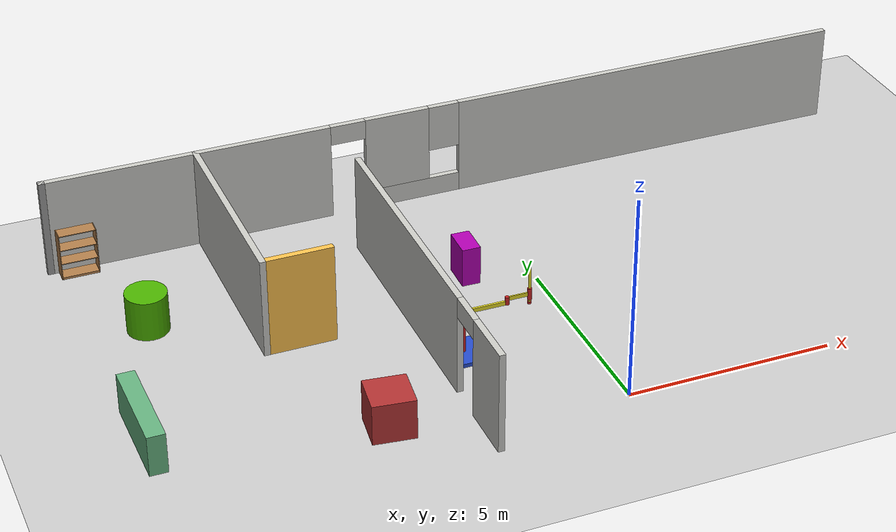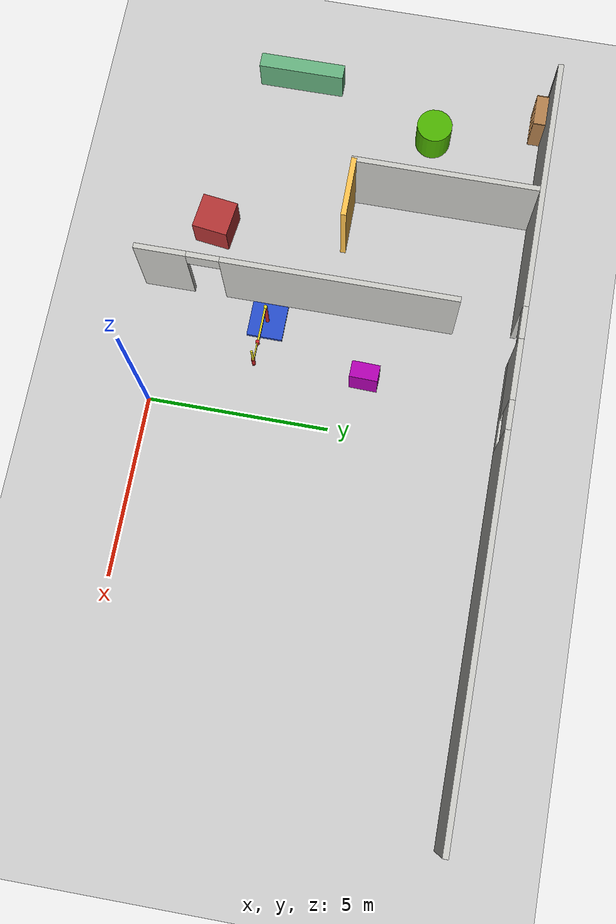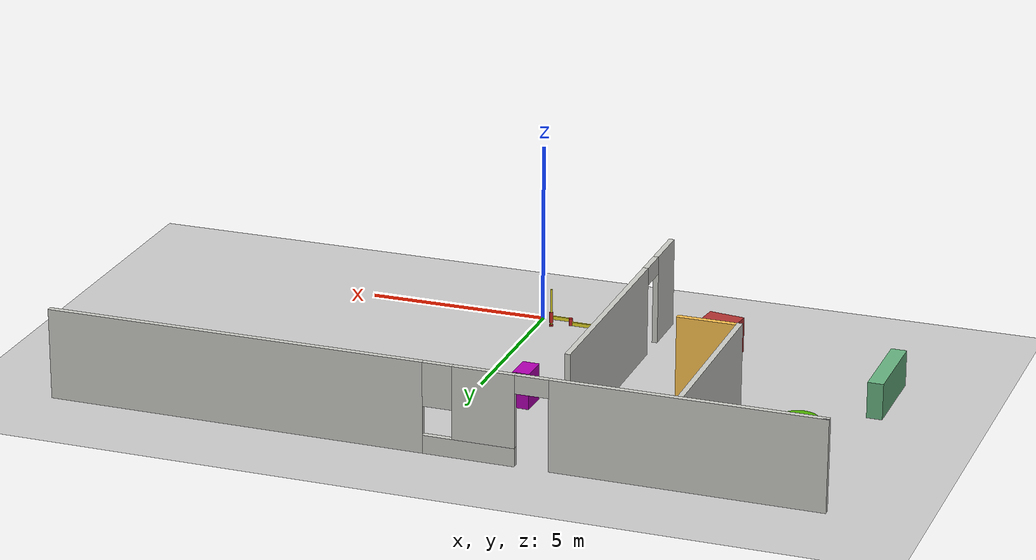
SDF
<sdf version="1.7">
 <world name="default">
  <model name="ground_plane">
   <static>1</static>
   <link name="link">
    <collision name="collision">
     <geometry><plane><normal>0 0 1</normal><size>100 100</size></plane></geometry>
     <surface><friction><ode><mu>100</mu><mu2>50</mu2></ode></friction></surface>
    </collision>
    <visual name="visual">
     <cast_shadows>0</cast_shadows>
     <geometry><plane><normal>0 0 1</normal><size>100 100</size></plane></geometry>
     <material>
      <script><uri>file://media/materials/scripts/gazebo.material</uri><name>Gazebo/Grey</name></script>
     </material>
    </visual>
   </link>
  </model>
  <model name="unit_box_1_0">
   <link name="link">
    <inertial>
     <mass>0.354011</mass>
     <inertia>
      <ixx>0.0472343</ixx>
      <ixy>0</ixy>
      <ixz>0</ixz>
      <iyy>0.0356513</iyy>
      <iyz>0</iyz>
      <izz>0.0238838</izz>
     </inertia>
    </inertial>
    <visual name="visual">
     <geometry><box><size>0.456597 0.775316 1</size></box></geometry>
     <material>
      <script><name>Gazebo/Grey</name><uri>file://media/materials/scripts/gazebo.material</uri></script>
      <shader type="pixel"><normal_map>__default__</normal_map></shader>
      <ambient>0.7 0 0.7 0</ambient>
      <diffuse>0.7 0.7 0.7 1</diffuse>
      <specular>0.01 0.01 0.01 1</specular>
      <emissive>0 0 0 1</emissive>
     </material>
    </visual>
    <collision name="collision">
     <geometry><box><size>0.456597 0.775316 1</size></box></geometry>
     <surface>
      <friction>
       <ode><mu>1</mu><mu2>1</mu2><fdir1>0 0 0</fdir1><slip1>0</slip1><slip2>0</slip2></ode>
       <torsional>
        <coefficient>1</coefficient>
        <patch_radius>0</patch_radius>
        <surface_radius>0</surface_radius>
        <use_patch_radius>1</use_patch_radius>
        <ode><slip>0</slip></ode>
       </torsional>
      </friction>
      <bounce><restitution_coefficient>0</restitution_coefficient><threshold>1e+06</threshold></bounce>
      <contact>
       <collide_without_contact>0</collide_without_contact>
       <collide_without_contact_bitmask>1</collide_without_contact_bitmask>
       <collide_bitmask>1</collide_bitmask>
       <ode>
        <soft_cfm>0</soft_cfm>
        <soft_erp>0.2</soft_erp>
        <kp>1e+13</kp>
        <kd>1</kd>
        <max_vel>0.01</max_vel>
        <min_depth>0</min_depth>
       </ode>
       <bullet>
        <split_impulse>1</split_impulse>
        <split_impulse_penetration_threshold>-0.01</split_impulse_penetration_threshold>
        <soft_cfm>0</soft_cfm>
        <soft_erp>0.2</soft_erp>
        <kp>1e+13</kp>
        <kd>1</kd>
       </bullet>
      </contact>
     </surface>
    </collision>
   </link>
   <static>0</static>
   <pose>-1.52355 5.76066 0.499996 9e-06 2e-06 -0.02596</pose>
  </model>
  <model name="unit_cylinder_13">
   <link name="link">
    <inertial>
     <mass>1</mass>
     <inertia><ixx>0.145833</ixx><ixy>0</ixy><ixz>0</ixz><iyy>0.145833</iyy><iyz>0</iyz><izz>0.125</izz></inertia>
    </inertial>
    <visual name="visual">
     <geometry><cylinder><radius>0.5</radius><length>1</length></cylinder></geometry>
     <material>
      <script><name>Gazebo/Grey</name><uri>file://media/materials/scripts/gazebo.material</uri></script>
      <shader type="pixel"><normal_map>__default__</normal_map></shader>
      <ambient>0.3 0.7 0 0</ambient>
      <diffuse>0.7 0.7 0.7 1</diffuse>
      <specular>0.01 0.01 0.01 1</specular>
      <emissive>0 0 0 1</emissive>
     </material>
    </visual>
    <collision name="collision">
     <geometry><cylinder><radius>0.5</radius><length>1</length></cylinder></geometry>
     <surface>
      <friction>
       <ode><mu>1</mu><mu2>1</mu2><fdir1>0 0 0</fdir1><slip1>0</slip1><slip2>0</slip2></ode>
       <torsional>
        <coefficient>1</coefficient>
        <patch_radius>0</patch_radius>
        <surface_radius>0</surface_radius>
        <use_patch_radius>1</use_patch_radius>
        <ode><slip>0</slip></ode>
       </torsional>
      </friction>
      <bounce><restitution_coefficient>0</restitution_coefficient><threshold>1e+06</threshold></bounce>
      <contact>
       <collide_without_contact>0</collide_without_contact>
       <collide_without_contact_bitmask>1</collide_without_contact_bitmask>
       <collide_bitmask>1</collide_bitmask>
       <ode>
        <soft_cfm>0</soft_cfm>
        <soft_erp>0.2</soft_erp>
        <kp>1e+13</kp>
        <kd>1</kd>
        <max_vel>0.01</max_vel>
        <min_depth>0</min_depth>
       </ode>
       <bullet>
        <split_impulse>1</split_impulse>
        <split_impulse_penetration_threshold>-0.01</split_impulse_penetration_threshold>
        <soft_cfm>0</soft_cfm>
        <soft_erp>0.2</soft_erp>
        <kp>1e+13</kp>
        <kd>1</kd>
       </bullet>
      </contact>
     </surface>
    </collision>
   </link>
   <static>0</static>
   <pose>-9.10904 6.48116 0.499998 3e-06 1e-06 -0</pose>
  </model>
  <model name="unit_box_15">
   <link name="link">
    <inertial>
     <mass>1</mass>
     <inertia>
      <ixx>0.166667</ixx>
      <ixy>0</ixy>
      <ixz>0</ixz>
      <iyy>0.166667</iyy>
      <iyz>0</iyz>
      <izz>0.166667</izz>
     </inertia>
    </inertial>
    <visual name="visual">
     <geometry><box><size>1 1 1</size></box></geometry>
     <material>
      <script><name>Gazebo/Grey</name><uri>file://media/materials/scripts/gazebo.material</uri></script>
      <shader type="pixel"><normal_map>__default__</normal_map></shader>
      <ambient>0.7 0.2 0.2 0</ambient>
      <diffuse>0.7 0.7 0.7 1</diffuse>
      <specular>0.01 0.01 0.01 1</specular>
      <emissive>0 0 0 1</emissive>
     </material>
    </visual>
    <collision name="collision">
     <geometry><box><size>1 1 1</size></box></geometry>
     <surface>
      <friction>
       <ode><mu>1</mu><mu2>1</mu2><fdir1>0 0 0</fdir1><slip1>0</slip1><slip2>0</slip2></ode>
       <torsional>
        <coefficient>1</coefficient>
        <patch_radius>0</patch_radius>
        <surface_radius>0</surface_radius>
        <use_patch_radius>1</use_patch_radius>
        <ode><slip>0</slip></ode>
       </torsional>
      </friction>
      <bounce><restitution_coefficient>0</restitution_coefficient><threshold>1e+06</threshold></bounce>
      <contact>
       <collide_without_contact>0</collide_without_contact>
       <collide_without_contact_bitmask>1</collide_without_contact_bitmask>
       <collide_bitmask>1</collide_bitmask>
       <ode>
        <soft_cfm>0</soft_cfm>
        <soft_erp>0.2</soft_erp>
        <kp>1e+13</kp>
        <kd>1</kd>
        <max_vel>0.01</max_vel>
        <min_depth>0</min_depth>
       </ode>
       <bullet>
        <split_impulse>1</split_impulse>
        <split_impulse_penetration_threshold>-0.01</split_impulse_penetration_threshold>
        <soft_cfm>0</soft_cfm>
        <soft_erp>0.2</soft_erp>
        <kp>1e+13</kp>
        <kd>1</kd>
       </bullet>
      </contact>
     </surface>
    </collision>
   </link>
   <static>0</static>
   <pose>-5.30929 0.86418 0.499999 1.5708 2e-06 -0.128436</pose>
  </model>
  <model name="simple_arm">
   <link name="arm_base">
    <inertial>
     <pose>0 0 0.00099 0 -0 0</pose>
     <inertia><ixx>1.11</ixx><ixy>0</ixy><ixz>0</ixz><iyy>100.11</iyy><iyz>0</iyz><izz>1.01</izz></inertia>
     <mass>101</mass>
    </inertial>
    <collision name="arm_base_geom">
     <pose>0 0 0.05 0 -0 0</pose>
     <geometry><box><size>1 1 0.1</size></box></geometry>
    </collision>
    <visual name="arm_base_geom_visual">
     <pose>0 0 0.05 0 -0 0</pose>
     <geometry><box><size>1 1 0.1</size></box></geometry>
     <material>
      <script><uri>file://media/materials/scripts/gazebo.material</uri><name>Gazebo/Blue</name></script>
     </material>
    </visual>
    <collision name="arm_base_geom_arm_trunk">
     <pose>0 0 0.6 0 -0 0</pose>
     <geometry><cylinder><radius>0.05</radius><length>1</length></cylinder></geometry>
    </collision>
    <visual name="arm_base_geom_arm_trunk_visual">
     <pose>0 0 0.6 0 -0 0</pose>
     <geometry><cylinder><radius>0.05</radius><length>1</length></cylinder></geometry>
     <material>
      <script><uri>file://media/materials/scripts/gazebo.material</uri><name>Gazebo/Red</name></script>
     </material>
    </visual>
   </link>
   <link name="arm_shoulder_pan">
    <pose>0 0 1.1 0 -0 0</pose>
    <inertial>
     <pose>0.045455 0 0 0 -0 0</pose>
     <inertia><ixx>0.011</ixx><ixy>0</ixy><ixz>0</ixz><iyy>0.0225</iyy><iyz>0</iyz><izz>0.0135</izz></inertia>
     <mass>1.1</mass>
    </inertial>
    <collision name="arm_shoulder_pan_geom">
     <pose>0 0 0.05 0 -0 0</pose>
     <geometry><cylinder><radius>0.05</radius><length>0.1</length></cylinder></geometry>
    </collision>
    <visual name="arm_shoulder_pan_geom_visual">
     <pose>0 0 0.05 0 -0 0</pose>
     <geometry><cylinder><radius>0.05</radius><length>0.1</length></cylinder></geometry>
     <material>
      <script><uri>file://media/materials/scripts/gazebo.material</uri><name>Gazebo/Yellow</name></script>
     </material>
    </visual>
    <collision name="arm_shoulder_pan_geom_arm_shoulder">
     <pose>0.55 0 0.05 0 -0 0</pose>
     <geometry><box><size>1 0.05 0.1</size></box></geometry>
    </collision>
    <visual name="arm_shoulder_pan_geom_arm_shoulder_visual">
     <pose>0.55 0 0.05 0 -0 0</pose>
     <geometry><box><size>1 0.05 0.1</size></box></geometry>
     <material>
      <script><uri>file://media/materials/scripts/gazebo.material</uri><name>Gazebo/Yellow</name></script>
     </material>
    </visual>
   </link>
   <link name="arm_elbow_pan">
    <pose>1.05 0 1.1 0 -0 0</pose>
    <inertial>
     <pose>0.0875 0 0.083333 0 -0 0</pose>
     <inertia>
      <ixx>0.031</ixx>
      <ixy>0</ixy>
      <ixz>0.005</ixz>
      <iyy>0.07275</iyy>
      <iyz>0</iyz>
      <izz>0.04475</izz>
     </inertia>
     <mass>1.2</mass>
    </inertial>
    <collision name="arm_elbow_pan_geom">
     <pose>0 0 0.1 0 -0 0</pose>
     <geometry><cylinder><radius>0.05</radius><length>0.2</length></cylinder></geometry>
    </collision>
    <visual name="arm_elbow_pan_geom_visual">
     <pose>0 0 0.1 0 -0 0</pose>
     <geometry><cylinder><radius>0.05</radius><length>0.2</length></cylinder></geometry>
     <material>
      <script><uri>file://media/materials/scripts/gazebo.material</uri><name>Gazebo/Red</name></script>
     </material>
    </visual>
    <collision name="arm_elbow_pan_geom_arm_elbow">
     <pose>0.3 0 0.15 0 -0 0</pose>
     <geometry><box><size>0.5 0.03 0.1</size></box></geometry>
    </collision>
    <visual name="arm_elbow_pan_geom_arm_elbow_visual">
     <pose>0.3 0 0.15 0 -0 0</pose>
     <geometry><box><size>0.5 0.03 0.1</size></box></geometry>
     <material>
      <script><uri>file://media/materials/scripts/gazebo.material</uri><name>Gazebo/Yellow</name></script>
     </material>
    </visual>
    <collision name="arm_elbow_pan_geom_arm_wrist">
     <pose>0.55 0 0.15 0 -0 0</pose>
     <geometry><cylinder><radius>0.05</radius><length>0.3</length></cylinder></geometry>
    </collision>
    <visual name="arm_elbow_pan_geom_arm_wrist_visual">
     <pose>0.55 0 0.15 0 -0 0</pose>
     <geometry><cylinder><radius>0.05</radius><length>0.3</length></cylinder></geometry>
     <material>
      <script><uri>file://media/materials/scripts/gazebo.material</uri><name>Gazebo/Red</name></script>
     </material>
    </visual>
   </link>
   <link name="arm_wrist_lift">
    <pose>1.6 0 1.05 0 -0 0</pose>
    <inertial>
     <inertia><ixx>0.01</ixx><ixy>0</ixy><ixz>0</ixz><iyy>0.01</iyy><iyz>0</iyz><izz>0.001</izz></inertia>
     <mass>0.1</mass>
    </inertial>
    <collision name="arm_wrist_lift_geom">
     <pose>0 0 0.5 0 -0 0</pose>
     <geometry><cylinder><radius>0.03</radius><length>1</length></cylinder></geometry>
    </collision>
    <visual name="arm_wrist_lift_geom_visual">
     <pose>0 0 0.5 0 -0 0</pose>
     <geometry><cylinder><radius>0.03</radius><length>1</length></cylinder></geometry>
     <material>
      <script><uri>file://media/materials/scripts/gazebo.material</uri><name>Gazebo/Yellow</name></script>
     </material>
    </visual>
   </link>
   <link name="arm_wrist_roll">
    <pose>1.6 0 1 0 -0 0</pose>
    <inertial>
     <inertia><ixx>0.01</ixx><ixy>0</ixy><ixz>0</ixz><iyy>0.01</iyy><iyz>0</iyz><izz>0.001</izz></inertia>
     <mass>0.1</mass>
    </inertial>
    <collision name="arm_wrist_roll_geom">
     <pose>0 0 0.025 0 -0 0</pose>
     <geometry><cylinder><radius>0.05</radius><length>0.05</length></cylinder></geometry>
    </collision>
    <visual name="arm_wrist_roll_geom_visual">
     <pose>0 0 0.025 0 -0 0</pose>
     <geometry><cylinder><radius>0.05</radius><length>0.05</length></cylinder></geometry>
     <material>
      <script><uri>file://media/materials/scripts/gazebo.material</uri><name>Gazebo/Red</name></script>
     </material>
    </visual>
   </link>
   <joint name="arm_shoulder_pan_joint" type="revolute">
    <parent>arm_base</parent>
    <child>arm_shoulder_pan</child>
    <axis>
     <dynamics>
      <damping>1</damping>
      <friction>0</friction>
      <spring_reference>0</spring_reference>
      <spring_stiffness>0</spring_stiffness>
     </dynamics>
     <xyz expressed_in="__model__">0 0 1</xyz>
     <limit><lower>-1e+16</lower><upper>1e+16</upper></limit>
    </axis>
   </joint>
   <joint name="arm_elbow_pan_joint" type="revolute">
    <parent>arm_shoulder_pan</parent>
    <child>arm_elbow_pan</child>
    <axis>
     <dynamics>
      <damping>1</damping>
      <friction>0</friction>
      <spring_reference>0</spring_reference>
      <spring_stiffness>0</spring_stiffness>
     </dynamics>
     <xyz expressed_in="__model__">0 0 1</xyz>
     <limit><lower>-1e+16</lower><upper>1e+16</upper></limit>
    </axis>
   </joint>
   <joint name="arm_wrist_lift_joint" type="prismatic">
    <parent>arm_elbow_pan</parent>
    <child>arm_wrist_lift</child>
    <axis>
     <dynamics>
      <damping>1</damping>
      <friction>0</friction>
      <spring_reference>0</spring_reference>
      <spring_stiffness>0</spring_stiffness>
     </dynamics>
     <limit><lower>-0.8</lower><upper>0.1</upper></limit>
     <xyz expressed_in="__model__">0 0 1</xyz>
    </axis>
   </joint>
   <joint name="arm_wrist_roll_joint" type="revolute">
    <parent>arm_wrist_lift</parent>
    <child>arm_wrist_roll</child>
    <axis>
     <dynamics>
      <damping>1</damping>
      <friction>0</friction>
      <spring_reference>0</spring_reference>
      <spring_stiffness>0</spring_stiffness>
     </dynamics>
     <limit><lower>-2.99999</lower><upper>2.99999</upper></limit>
     <xyz expressed_in="__model__">0 0 1</xyz>
    </axis>
   </joint>
   <pose>-2.79115 2.80103 -0 0 -0 -0.006956</pose>
  </model>
  <model name="bookshelf">
   <static>1</static>
   <link name="link">
    <inertial><mass>1</mass></inertial>
    <collision name="back">
     <pose>0 0.005 0.6 0 -0 0</pose>
     <geometry><box><size>0.9 0.01 1.2</size></box></geometry>
    </collision>
    <visual name="visual1">
     <pose>0 0.005 0.6 0 -0 0</pose>
     <geometry><box><size>0.9 0.01 1.2</size></box></geometry>
     <material>
      <script><uri>file://media/materials/scripts/gazebo.material</uri><name>Gazebo/Wood</name></script>
     </material>
    </visual>
    <collision name="left_side">
     <pose>0.45 -0.195 0.6 0 -0 0</pose>
     <geometry><box><size>0.02 0.4 1.2</size></box></geometry>
    </collision>
    <visual name="visual2">
     <pose>0.45 -0.195 0.6 0 -0 0</pose>
     <geometry><box><size>0.02 0.4 1.2</size></box></geometry>
     <material>
      <script><uri>file://media/materials/scripts/gazebo.material</uri><name>Gazebo/Wood</name></script>
     </material>
    </visual>
    <collision name="right_side">
     <pose>-0.45 -0.195 0.6 0 -0 0</pose>
     <geometry><box><size>0.02 0.4 1.2</size></box></geometry>
    </collision>
    <visual name="visual3">
     <pose>-0.45 -0.195 0.6 0 -0 0</pose>
     <geometry><box><size>0.02 0.4 1.2</size></box></geometry>
     <material>
      <script><uri>file://media/materials/scripts/gazebo.material</uri><name>Gazebo/Wood</name></script>
     </material>
    </visual>
    <collision name="bottom">
     <pose>0 -0.195 0.03 0 -0 0</pose>
     <geometry><box><size>0.88 0.4 0.06</size></box></geometry>
    </collision>
    <visual name="visual4">
     <pose>0 -0.195 0.03 0 -0 0</pose>
     <geometry><box><size>0.88 0.4 0.06</size></box></geometry>
     <material>
      <script><uri>file://media/materials/scripts/gazebo.material</uri><name>Gazebo/Wood</name></script>
     </material>
    </visual>
    <collision name="top">
     <pose>0 -0.195 1.19 0 -0 0</pose>
     <geometry><box><size>0.88 0.4 0.02</size></box></geometry>
    </collision>
    <visual name="visual5">
     <pose>0 -0.195 1.19 0 -0 0</pose>
     <geometry><box><size>0.88 0.4 0.02</size></box></geometry>
     <material>
      <script><uri>file://media/materials/scripts/gazebo.material</uri><name>Gazebo/Wood</name></script>
     </material>
    </visual>
    <collision name="low_shelf">
     <pose>0 -0.195 0.43 0 -0 0</pose>
     <geometry><box><size>0.88 0.4 0.02</size></box></geometry>
    </collision>
    <visual name="visual6">
     <pose>0 -0.195 0.43 0 -0 0</pose>
     <geometry><box><size>0.88 0.4 0.02</size></box></geometry>
     <material>
      <script><uri>file://media/materials/scripts/gazebo.material</uri><name>Gazebo/Wood</name></script>
     </material>
    </visual>
    <collision name="high_shelf">
     <pose>0 -0.195 0.8 0 -0 0</pose>
     <geometry><box><size>0.88 0.4 0.02</size></box></geometry>
    </collision>
    <visual name="visual7">
     <pose>0 -0.195 0.8 0 -0 0</pose>
     <geometry><box><size>0.88 0.4 0.02</size></box></geometry>
     <material>
      <script><uri>file://media/materials/scripts/gazebo.material</uri><name>Gazebo/Wood</name></script>
     </material>
    </visual>
   </link>
   <pose>-10.0015 9.61111 0 0 -0 0</pose>
  </model>
  <model name="unit_box90">
   <link name="link">
    <inertial>
     <mass>1</mass>
     <inertia>
      <ixx>0.166667</ixx>
      <ixy>0</ixy>
      <ixz>0</ixz>
      <iyy>0.166667</iyy>
      <iyz>0</iyz>
      <izz>0.166667</izz>
     </inertia>
    </inertial>
    <visual name="visual">
     <geometry><box><size>0.424568 2.43542 1</size></box></geometry>
     <material>
      <script><name>Gazebo/Grey</name><uri>file://media/materials/scripts/gazebo.material</uri></script>
      <shader type="pixel"><normal_map>__default__</normal_map></shader>
      <ambient>0.4 0.7 0.5 0</ambient>
      <diffuse>0.7 0.7 0.7 1</diffuse>
      <specular>0.01 0.01 0.01 1</specular>
      <emissive>0 0 0 1</emissive>
     </material>
    </visual>
    <collision name="collision">
     <geometry><box><size>0.424568 2.43542 1</size></box></geometry>
     <surface>
      <friction>
       <ode><mu>1</mu><mu2>1</mu2><fdir1>0 0 0</fdir1><slip1>0</slip1><slip2>0</slip2></ode>
       <torsional>
        <coefficient>1</coefficient>
        <patch_radius>0</patch_radius>
        <surface_radius>0</surface_radius>
        <use_patch_radius>1</use_patch_radius>
        <ode><slip>0</slip></ode>
       </torsional>
      </friction>
      <bounce><restitution_coefficient>0</restitution_coefficient><threshold>1e+06</threshold></bounce>
      <contact>
       <collide_without_contact>0</collide_without_contact>
       <collide_without_contact_bitmask>1</collide_without_contact_bitmask>
       <collide_bitmask>1</collide_bitmask>
       <ode>
        <soft_cfm>0</soft_cfm>
        <soft_erp>0.2</soft_erp>
        <kp>1e+13</kp>
        <kd>1</kd>
        <max_vel>0.01</max_vel>
        <min_depth>0</min_depth>
       </ode>
       <bullet>
        <split_impulse>1</split_impulse>
        <split_impulse_penetration_threshold>-0.01</split_impulse_penetration_threshold>
        <soft_cfm>0</soft_cfm>
        <soft_erp>0.2</soft_erp>
        <kp>1e+13</kp>
        <kd>1</kd>
       </bullet>
      </contact>
     </surface>
    </collision>
   </link>
   <static>0</static>
   <pose>-10.3425 2.41052 0.499946 -4.4e-05 -0 0.001559</pose>
  </model>
  <model name="training_area">
   <link name="Wall_18">
    <pose>-3.31028 3.23789 0 0 -0 1.5708</pose>
    <inertial>
     <mass>1</mass>
     <inertia><ixx>1</ixx><ixy>0</ixy><ixz>0</ixz><iyy>1</iyy><iyz>0</iyz><izz>1</izz></inertia>
    </inertial>
    <visual name="Wall_18_Visual_1">
     <pose>1.15758 0 1.25 0 -0 0</pose>
     <geometry><box><size>6.43485 0.15 2.5</size></box></geometry>
     <material>
      <script><uri>file://media/materials/scripts/gazebo.material</uri><name>Gazebo/CeilingTiled</name></script>
      <ambient>0.361 0.363 0.927 1</ambient>
      <shader type="pixel"><normal_map>__default__</normal_map></shader>
      <diffuse>1 1 1 1</diffuse>
      <specular>0 0 0 1</specular>
      <emissive>0 0 0 1</emissive>
     </material>
     <meta><layer>0</layer></meta>
    </visual>
    <visual name="Wall_18_Visual_2">
     <pose>-2.50985 0 2.25 0 -0 0</pose>
     <geometry><box><size>0.9 0.15 0.5</size></box></geometry>
     <material>
      <script><uri>file://media/materials/scripts/gazebo.material</uri><name>Gazebo/CeilingTiled</name></script>
      <ambient>0.361 0.363 0.627 1</ambient>
      <shader type="pixel"><normal_map>__default__</normal_map></shader>
      <diffuse>1 1 1 1</diffuse>
      <specular>0 0 0 1</specular>
      <emissive>0 0 0 1</emissive>
     </material>
     <meta><layer>0</layer></meta>
    </visual>
    <visual name="Wall_18_Visual_0">
     <pose>-3.66742 0 1.25 0 -0 0</pose>
     <geometry><box><size>1.41515 0.15 2.5</size></box></geometry>
     <material>
      <script><uri>file://media/materials/scripts/gazebo.material</uri><name>Gazebo/CeilingTiled</name></script>
      <ambient>0.961 0.363 0.327 1</ambient>
      <shader type="pixel"><normal_map>__default__</normal_map></shader>
      <diffuse>1 1 1 1</diffuse>
      <specular>0 0 0 1</specular>
      <emissive>0 0 0 1</emissive>
     </material>
     <meta><layer>0</layer></meta>
    </visual>
    <collision name="Wall_18_Collision_0">
     <pose>-3.66742 0 1.25 0 -0 0</pose>
     <geometry><box><size>1.41515 0.15 2.5</size></box></geometry>
     <surface>
      <friction>
       <ode><mu>1</mu><mu2>1</mu2><fdir1>0 0 0</fdir1><slip1>0</slip1><slip2>0</slip2></ode>
       <torsional>
        <coefficient>1</coefficient>
        <patch_radius>0</patch_radius>
        <surface_radius>0</surface_radius>
        <use_patch_radius>1</use_patch_radius>
        <ode><slip>0</slip></ode>
       </torsional>
      </friction>
      <bounce><restitution_coefficient>0</restitution_coefficient><threshold>1e+06</threshold></bounce>
      <contact>
       <collide_without_contact>0</collide_without_contact>
       <collide_without_contact_bitmask>1</collide_without_contact_bitmask>
       <collide_bitmask>1</collide_bitmask>
       <ode>
        <soft_cfm>0</soft_cfm>
        <soft_erp>0.2</soft_erp>
        <kp>1e+13</kp>
        <kd>1</kd>
        <max_vel>0.01</max_vel>
        <min_depth>0</min_depth>
       </ode>
       <bullet>
        <split_impulse>1</split_impulse>
        <split_impulse_penetration_threshold>-0.01</split_impulse_penetration_threshold>
        <soft_cfm>0</soft_cfm>
        <soft_erp>0.2</soft_erp>
        <kp>1e+13</kp>
        <kd>1</kd>
       </bullet>
      </contact>
     </surface>
    </collision>
    <collision name="Wall_18_Collision_2">
     <pose>-2.50985 0 2.25 0 -0 0</pose>
     <geometry><box><size>0.9 0.15 0.5</size></box></geometry>
     <surface>
      <friction>
       <ode><mu>1</mu><mu2>1</mu2><fdir1>0 0 0</fdir1><slip1>0</slip1><slip2>0</slip2></ode>
       <torsional>
        <coefficient>1</coefficient>
        <patch_radius>0</patch_radius>
        <surface_radius>0</surface_radius>
        <use_patch_radius>1</use_patch_radius>
        <ode><slip>0</slip></ode>
       </torsional>
      </friction>
      <bounce><restitution_coefficient>0</restitution_coefficient><threshold>1e+06</threshold></bounce>
      <contact>
       <collide_without_contact>0</collide_without_contact>
       <collide_without_contact_bitmask>1</collide_without_contact_bitmask>
       <collide_bitmask>1</collide_bitmask>
       <ode>
        <soft_cfm>0</soft_cfm>
        <soft_erp>0.2</soft_erp>
        <kp>1e+13</kp>
        <kd>1</kd>
        <max_vel>0.01</max_vel>
        <min_depth>0</min_depth>
       </ode>
       <bullet>
        <split_impulse>1</split_impulse>
        <split_impulse_penetration_threshold>-0.01</split_impulse_penetration_threshold>
        <soft_cfm>0</soft_cfm>
        <soft_erp>0.2</soft_erp>
        <kp>1e+13</kp>
        <kd>1</kd>
       </bullet>
      </contact>
     </surface>
    </collision>
    <collision name="Wall_18_Collision_1">
     <pose>1.15758 0 1.25 0 -0 0</pose>
     <geometry><box><size>6.43485 0.15 2.5</size></box></geometry>
     <surface>
      <friction>
       <ode><mu>1</mu><mu2>1</mu2><fdir1>0 0 0</fdir1><slip1>0</slip1><slip2>0</slip2></ode>
       <torsional>
        <coefficient>1</coefficient>
        <patch_radius>0</patch_radius>
        <surface_radius>0</surface_radius>
        <use_patch_radius>1</use_patch_radius>
        <ode><slip>0</slip></ode>
       </torsional>
      </friction>
      <bounce><restitution_coefficient>0</restitution_coefficient><threshold>1e+06</threshold></bounce>
      <contact>
       <collide_without_contact>0</collide_without_contact>
       <collide_without_contact_bitmask>1</collide_without_contact_bitmask>
       <collide_bitmask>1</collide_bitmask>
       <ode>
        <soft_cfm>0</soft_cfm>
        <soft_erp>0.2</soft_erp>
        <kp>1e+13</kp>
        <kd>1</kd>
        <max_vel>0.01</max_vel>
        <min_depth>0</min_depth>
       </ode>
       <bullet>
        <split_impulse>1</split_impulse>
        <split_impulse_penetration_threshold>-0.01</split_impulse_penetration_threshold>
        <soft_cfm>0</soft_cfm>
        <soft_erp>0.2</soft_erp>
        <kp>1e+13</kp>
        <kd>1</kd>
       </bullet>
      </contact>
     </surface>
    </collision>
   </link>
   <link name="Wall_22">
    <pose>-6.80922 6.72196 0 0 0 -1.5708</pose>
    <visual name="Wall_22_Visual">
     <pose>0 0 1.25 0 -0 0</pose>
     <geometry><box><size>5.25 0.15 2.5</size></box></geometry>
     <material>
      <script><uri>file://media/materials/scripts/gazebo.material</uri><name>Gazebo/CeilingTiled</name></script>
      <ambient>1 0.764706 0.305882 1</ambient>
      <shader type="pixel"/>
     </material>
     <meta><layer>0</layer></meta>
    </visual>
    <collision name="Wall_22_Collision">
     <pose>0 0 1.25 0 -0 0</pose>
     <geometry><box><size>5.25 0.15 2.5</size></box></geometry>
     <surface>
      <friction>
       <ode><mu>1</mu><mu2>1</mu2><fdir1>0 0 0</fdir1><slip1>0</slip1><slip2>0</slip2></ode>
       <torsional>
        <coefficient>1</coefficient>
        <patch_radius>0</patch_radius>
        <surface_radius>0</surface_radius>
        <use_patch_radius>1</use_patch_radius>
        <ode><slip>0</slip></ode>
       </torsional>
      </friction>
      <bounce><restitution_coefficient>0</restitution_coefficient><threshold>1e+06</threshold></bounce>
      <contact>
       <collide_without_contact>0</collide_without_contact>
       <collide_without_contact_bitmask>1</collide_without_contact_bitmask>
       <collide_bitmask>1</collide_bitmask>
       <ode>
        <soft_cfm>0</soft_cfm>
        <soft_erp>0.2</soft_erp>
        <kp>1e+13</kp>
        <kd>1</kd>
        <max_vel>0.01</max_vel>
        <min_depth>0</min_depth>
       </ode>
       <bullet>
        <split_impulse>1</split_impulse>
        <split_impulse_penetration_threshold>-0.01</split_impulse_penetration_threshold>
        <soft_cfm>0</soft_cfm>
        <soft_erp>0.2</soft_erp>
        <kp>1e+13</kp>
        <kd>1</kd>
       </bullet>
      </contact>
     </surface>
    </collision>
   </link>
   <link name="Wall_23">
    <pose>-6.00922 4.17196 0 0 -0 0</pose>
    <visual name="Wall_23_Visual">
     <pose>0 0 1.25 0 -0 0</pose>
     <geometry><box><size>1.75 0.15 2.5</size></box></geometry>
     <material>
      <script><uri>file://media/materials/scripts/gazebo.material</uri><name>Gazebo/Grey</name></script>
      <ambient>1 0.764706 0.305882 1</ambient>
      <shader type="pixel"/>
     </material>
     <meta><layer>0</layer></meta>
    </visual>
    <collision name="Wall_23_Collision">
     <pose>0 0 1.25 0 -0 0</pose>
     <geometry><box><size>1.75 0.15 2.5</size></box></geometry>
     <surface>
      <friction>
       <ode><mu>1</mu><mu2>1</mu2><fdir1>0 0 0</fdir1><slip1>0</slip1><slip2>0</slip2></ode>
       <torsional>
        <coefficient>1</coefficient>
        <patch_radius>0</patch_radius>
        <surface_radius>0</surface_radius>
        <use_patch_radius>1</use_patch_radius>
        <ode><slip>0</slip></ode>
       </torsional>
      </friction>
      <bounce><restitution_coefficient>0</restitution_coefficient><threshold>1e+06</threshold></bounce>
      <contact>
       <collide_without_contact>0</collide_without_contact>
       <collide_without_contact_bitmask>1</collide_without_contact_bitmask>
       <collide_bitmask>1</collide_bitmask>
       <ode>
        <soft_cfm>0</soft_cfm>
        <soft_erp>0.2</soft_erp>
        <kp>1e+13</kp>
        <kd>1</kd>
        <max_vel>0.01</max_vel>
        <min_depth>0</min_depth>
       </ode>
       <bullet>
        <split_impulse>1</split_impulse>
        <split_impulse_penetration_threshold>-0.01</split_impulse_penetration_threshold>
        <soft_cfm>0</soft_cfm>
        <soft_erp>0.2</soft_erp>
        <kp>1e+13</kp>
        <kd>1</kd>
       </bullet>
      </contact>
     </surface>
    </collision>
   </link>
   <link name="Wall_3">
    <pose>-0.13 9.3 0 0 -0 3.14159</pose>
    <inertial>
     <mass>1</mass>
     <inertia><ixx>1</ixx><ixy>0</ixy><ixz>0</ixz><iyy>1</iyy><iyz>0</iyz><izz>1</izz></inertia>
    </inertial>
    <visual name="Wall_3_Visual_0">
     <pose>-5.29204 0 1.25 0 -0 0</pose>
     <geometry><box><size>10.4159 0.15 2.5</size></box></geometry>
     <material>
      <script><uri>file://media/materials/scripts/gazebo.material</uri><name>Gazebo/CeilingTiled</name></script>
      <ambient>0.8 0.965 0.106 1</ambient>
      <shader type="pixel"><normal_map>__default__</normal_map></shader>
      <diffuse>1 1 1 1</diffuse>
      <specular>0 0 0 1</specular>
      <emissive>0 0 0 1</emissive>
     </material>
     <meta><layer>0</layer></meta>
    </visual>
    <visual name="Wall_3_Visual_1">
     <pose>6.89421 0 1.25 0 -0 0</pose>
     <geometry><box><size>7.21159 0.15 2.5</size></box></geometry>
     <material>
      <script><uri>file://media/materials/scripts/gazebo.material</uri><name>Gazebo/CeilingTiled</name></script>
      <ambient>0.6 0.965 0.206 1</ambient>
      <shader type="pixel"><normal_map>__default__</normal_map></shader>
      <diffuse>1 1 1 1</diffuse>
      <specular>0 0 0 1</specular>
      <emissive>0 0 0 1</emissive>
     </material>
     <meta><layer>0</layer></meta>
    </visual>
    <visual name="Wall_3_Visual_3">
     <pose>1.55217 0 1.5 0 -0 0</pose>
     <geometry><box><size>1.67249 0.15 2</size></box></geometry>
     <material>
      <script><uri>file://media/materials/scripts/gazebo.material</uri><name>Gazebo/CeilingTiled</name></script>
      <ambient>0.3 1 0.406 1</ambient>
      <shader type="pixel"><normal_map>__default__</normal_map></shader>
      <diffuse>1 1 1 1</diffuse>
      <specular>0 0 0 1</specular>
      <emissive>0 0 0 1</emissive>
     </material>
     <meta><layer>0</layer></meta>
    </visual>
    <visual name="Wall_3_Visual_5">
     <pose>2.83841 0 2.25 0 -0 0</pose>
     <geometry><box><size>0.9 0.15 0.5</size></box></geometry>
     <material>
      <script><uri>file://media/materials/scripts/gazebo.material</uri><name>Gazebo/CeilingTiled</name></script>
      <ambient>0.8 0.965 0.606 1</ambient>
      <shader type="pixel"><normal_map>__default__</normal_map></shader>
      <diffuse>1 1 1 1</diffuse>
      <specular>0 0 0 1</specular>
      <emissive>0 0 0 1</emissive>
     </material>
     <meta><layer>0</layer></meta>
    </visual>
    <visual name="Wall_3_Visual_4">
     <pose>0.315921 0 1.9 0 -0 0</pose>
     <geometry><box><size>0.8 0.15 1.2</size></box></geometry>
     <material>
      <script><uri>file://media/materials/scripts/gazebo.material</uri><name>Gazebo/CeilingTiled</name></script>
      <ambient>0.6 0.765 0.506 1</ambient>
      <shader type="pixel"><normal_map>__default__</normal_map></shader>
      <diffuse>1 1 1 1</diffuse>
      <specular>0 0 0 1</specular>
      <emissive>0 0 0 1</emissive>
     </material>
     <meta><layer>0</layer></meta>
    </visual>
    <visual name="Wall_3_Visual_2">
     <pose>1.15217 0 0.25 0 -0 0</pose>
     <geometry><box><size>2.47249 0.15 0.5</size></box></geometry>
     <material>
      <script><uri>file://media/materials/scripts/gazebo.material</uri><name>Gazebo/CeilingTiled</name></script>
      <ambient>0.7 1 0.506 1</ambient>
      <shader type="pixel"><normal_map>__default__</normal_map></shader>
      <diffuse>1 1 1 1</diffuse>
      <specular>0 0 0 1</specular>
      <emissive>0 0 0 1</emissive>
     </material>
     <meta><layer>0</layer></meta>
    </visual>
    <collision name="Wall_3_Collision_5">
     <pose>2.83841 0 2.25 0 -0 0</pose>
     <geometry><box><size>0.9 0.15 0.5</size></box></geometry>
     <surface>
      <friction>
       <ode><mu>1</mu><mu2>1</mu2><fdir1>0 0 0</fdir1><slip1>0</slip1><slip2>0</slip2></ode>
       <torsional>
        <coefficient>1</coefficient>
        <patch_radius>0</patch_radius>
        <surface_radius>0</surface_radius>
        <use_patch_radius>1</use_patch_radius>
        <ode><slip>0</slip></ode>
       </torsional>
      </friction>
      <bounce><restitution_coefficient>0</restitution_coefficient><threshold>1e+06</threshold></bounce>
      <contact>
       <collide_without_contact>0</collide_without_contact>
       <collide_without_contact_bitmask>1</collide_without_contact_bitmask>
       <collide_bitmask>1</collide_bitmask>
       <ode>
        <soft_cfm>0</soft_cfm>
        <soft_erp>0.2</soft_erp>
        <kp>1e+13</kp>
        <kd>1</kd>
        <max_vel>0.01</max_vel>
        <min_depth>0</min_depth>
       </ode>
       <bullet>
        <split_impulse>1</split_impulse>
        <split_impulse_penetration_threshold>-0.01</split_impulse_penetration_threshold>
        <soft_cfm>0</soft_cfm>
        <soft_erp>0.2</soft_erp>
        <kp>1e+13</kp>
        <kd>1</kd>
       </bullet>
      </contact>
     </surface>
    </collision>
    <collision name="Wall_3_Collision_0">
     <pose>-5.29204 0 1.25 0 -0 0</pose>
     <geometry><box><size>10.4159 0.15 2.5</size></box></geometry>
     <surface>
      <friction>
       <ode><mu>1</mu><mu2>1</mu2><fdir1>0 0 0</fdir1><slip1>0</slip1><slip2>0</slip2></ode>
       <torsional>
        <coefficient>1</coefficient>
        <patch_radius>0</patch_radius>
        <surface_radius>0</surface_radius>
        <use_patch_radius>1</use_patch_radius>
        <ode><slip>0</slip></ode>
       </torsional>
      </friction>
      <bounce><restitution_coefficient>0</restitution_coefficient><threshold>1e+06</threshold></bounce>
      <contact>
       <collide_without_contact>0</collide_without_contact>
       <collide_without_contact_bitmask>1</collide_without_contact_bitmask>
       <collide_bitmask>1</collide_bitmask>
       <ode>
        <soft_cfm>0</soft_cfm>
        <soft_erp>0.2</soft_erp>
        <kp>1e+13</kp>
        <kd>1</kd>
        <max_vel>0.01</max_vel>
        <min_depth>0</min_depth>
       </ode>
       <bullet>
        <split_impulse>1</split_impulse>
        <split_impulse_penetration_threshold>-0.01</split_impulse_penetration_threshold>
        <soft_cfm>0</soft_cfm>
        <soft_erp>0.2</soft_erp>
        <kp>1e+13</kp>
        <kd>1</kd>
       </bullet>
      </contact>
     </surface>
    </collision>
    <collision name="Wall_3_Collision_4">
     <pose>0.315921 0 1.9 0 -0 0</pose>
     <geometry><box><size>0.8 0.15 1.2</size></box></geometry>
     <surface>
      <friction>
       <ode><mu>1</mu><mu2>1</mu2><fdir1>0 0 0</fdir1><slip1>0</slip1><slip2>0</slip2></ode>
       <torsional>
        <coefficient>1</coefficient>
        <patch_radius>0</patch_radius>
        <surface_radius>0</surface_radius>
        <use_patch_radius>1</use_patch_radius>
        <ode><slip>0</slip></ode>
       </torsional>
      </friction>
      <bounce><restitution_coefficient>0</restitution_coefficient><threshold>1e+06</threshold></bounce>
      <contact>
       <collide_without_contact>0</collide_without_contact>
       <collide_without_contact_bitmask>1</collide_without_contact_bitmask>
       <collide_bitmask>1</collide_bitmask>
       <ode>
        <soft_cfm>0</soft_cfm>
        <soft_erp>0.2</soft_erp>
        <kp>1e+13</kp>
        <kd>1</kd>
        <max_vel>0.01</max_vel>
        <min_depth>0</min_depth>
       </ode>
       <bullet>
        <split_impulse>1</split_impulse>
        <split_impulse_penetration_threshold>-0.01</split_impulse_penetration_threshold>
        <soft_cfm>0</soft_cfm>
        <soft_erp>0.2</soft_erp>
        <kp>1e+13</kp>
        <kd>1</kd>
       </bullet>
      </contact>
     </surface>
    </collision>
    <collision name="Wall_3_Collision_1">
     <pose>6.89421 0 1.25 0 -0 0</pose>
     <geometry><box><size>7.21159 0.15 2.5</size></box></geometry>
     <surface>
      <friction>
       <ode><mu>1</mu><mu2>1</mu2><fdir1>0 0 0</fdir1><slip1>0</slip1><slip2>0</slip2></ode>
       <torsional>
        <coefficient>1</coefficient>
        <patch_radius>0</patch_radius>
        <surface_radius>0</surface_radius>
        <use_patch_radius>1</use_patch_radius>
        <ode><slip>0</slip></ode>
       </torsional>
      </friction>
      <bounce><restitution_coefficient>0</restitution_coefficient><threshold>1e+06</threshold></bounce>
      <contact>
       <collide_without_contact>0</collide_without_contact>
       <collide_without_contact_bitmask>1</collide_without_contact_bitmask>
       <collide_bitmask>1</collide_bitmask>
       <ode>
        <soft_cfm>0</soft_cfm>
        <soft_erp>0.2</soft_erp>
        <kp>1e+13</kp>
        <kd>1</kd>
        <max_vel>0.01</max_vel>
        <min_depth>0</min_depth>
       </ode>
       <bullet>
        <split_impulse>1</split_impulse>
        <split_impulse_penetration_threshold>-0.01</split_impulse_penetration_threshold>
        <soft_cfm>0</soft_cfm>
        <soft_erp>0.2</soft_erp>
        <kp>1e+13</kp>
        <kd>1</kd>
       </bullet>
      </contact>
     </surface>
    </collision>
    <collision name="Wall_3_Collision_2">
     <pose>1.15217 0 0.25 0 -0 0</pose>
     <geometry><box><size>2.47249 0.15 0.5</size></box></geometry>
     <surface>
      <friction>
       <ode><mu>1</mu><mu2>1</mu2><fdir1>0 0 0</fdir1><slip1>0</slip1><slip2>0</slip2></ode>
       <torsional>
        <coefficient>1</coefficient>
        <patch_radius>0</patch_radius>
        <surface_radius>0</surface_radius>
        <use_patch_radius>1</use_patch_radius>
        <ode><slip>0</slip></ode>
       </torsional>
      </friction>
      <bounce><restitution_coefficient>0</restitution_coefficient><threshold>1e+06</threshold></bounce>
      <contact>
       <collide_without_contact>0</collide_without_contact>
       <collide_without_contact_bitmask>1</collide_without_contact_bitmask>
       <collide_bitmask>1</collide_bitmask>
       <ode>
        <soft_cfm>0</soft_cfm>
        <soft_erp>0.2</soft_erp>
        <kp>1e+13</kp>
        <kd>1</kd>
        <max_vel>0.01</max_vel>
        <min_depth>0</min_depth>
       </ode>
       <bullet>
        <split_impulse>1</split_impulse>
        <split_impulse_penetration_threshold>-0.01</split_impulse_penetration_threshold>
        <soft_cfm>0</soft_cfm>
        <soft_erp>0.2</soft_erp>
        <kp>1e+13</kp>
        <kd>1</kd>
       </bullet>
      </contact>
     </surface>
    </collision>
    <collision name="Wall_3_Collision_3">
     <pose>1.55217 0 1.5 0 -0 0</pose>
     <geometry><box><size>1.67249 0.15 2</size></box></geometry>
     <surface>
      <friction>
       <ode><mu>1</mu><mu2>1</mu2><fdir1>0 0 0</fdir1><slip1>0</slip1><slip2>0</slip2></ode>
       <torsional>
        <coefficient>1</coefficient>
        <patch_radius>0</patch_radius>
        <surface_radius>0</surface_radius>
        <use_patch_radius>1</use_patch_radius>
        <ode><slip>0</slip></ode>
       </torsional>
      </friction>
      <bounce><restitution_coefficient>0</restitution_coefficient><threshold>1e+06</threshold></bounce>
      <contact>
       <collide_without_contact>0</collide_without_contact>
       <collide_without_contact_bitmask>1</collide_without_contact_bitmask>
       <collide_bitmask>1</collide_bitmask>
       <ode>
        <soft_cfm>0</soft_cfm>
        <soft_erp>0.2</soft_erp>
        <kp>1e+13</kp>
        <kd>1</kd>
        <max_vel>0.01</max_vel>
        <min_depth>0</min_depth>
       </ode>
       <bullet>
        <split_impulse>1</split_impulse>
        <split_impulse_penetration_threshold>-0.01</split_impulse_penetration_threshold>
        <soft_cfm>0</soft_cfm>
        <soft_erp>0.2</soft_erp>
        <kp>1e+13</kp>
        <kd>1</kd>
       </bullet>
      </contact>
     </surface>
    </collision>
   </link>
   <link name="Wall_4">
    <pose>-10.55 9.3 0 0 -0 0</pose>
    <visual name="Wall_4_Visual">
     <pose>0 0 1.25 0 -0 0</pose>
     <geometry><box><size>0.16 0.15 2.5</size></box></geometry>
     <material>
      <script><uri>file://media/materials/scripts/gazebo.material</uri><name>Gazebo/Grey</name></script>
      <ambient>1 1 1 1</ambient>
      <shader type="pixel"/>
     </material>
     <meta><layer>0</layer></meta>
    </visual>
    <collision name="Wall_4_Collision">
     <pose>0 0 1.25 0 -0 0</pose>
     <geometry><box><size>0.16 0.15 2.5</size></box></geometry>
     <surface>
      <friction>
       <ode><mu>1</mu><mu2>1</mu2><fdir1>0 0 0</fdir1><slip1>0</slip1><slip2>0</slip2></ode>
       <torsional>
        <coefficient>1</coefficient>
        <patch_radius>0</patch_radius>
        <surface_radius>0</surface_radius>
        <use_patch_radius>1</use_patch_radius>
        <ode><slip>0</slip></ode>
       </torsional>
      </friction>
      <bounce><restitution_coefficient>0</restitution_coefficient><threshold>1e+06</threshold></bounce>
      <contact>
       <collide_without_contact>0</collide_without_contact>
       <collide_without_contact_bitmask>1</collide_without_contact_bitmask>
       <collide_bitmask>1</collide_bitmask>
       <ode>
        <soft_cfm>0</soft_cfm>
        <soft_erp>0.2</soft_erp>
        <kp>1e+13</kp>
        <kd>1</kd>
        <max_vel>0.01</max_vel>
        <min_depth>0</min_depth>
       </ode>
       <bullet>
        <split_impulse>1</split_impulse>
        <split_impulse_penetration_threshold>-0.01</split_impulse_penetration_threshold>
        <soft_cfm>0</soft_cfm>
        <soft_erp>0.2</soft_erp>
        <kp>1e+13</kp>
        <kd>1</kd>
       </bullet>
      </contact>
     </surface>
    </collision>
   </link>
   <static>1</static>
   <pose>-0.09596 0.33644 0 0 -0 0</pose>
  </model>
 </world>
</sdf>
